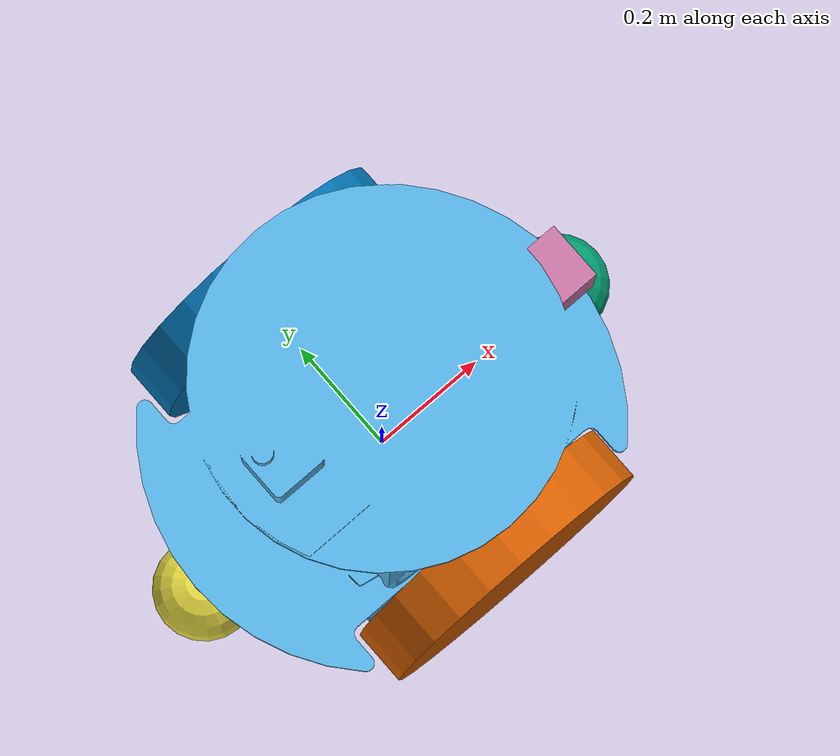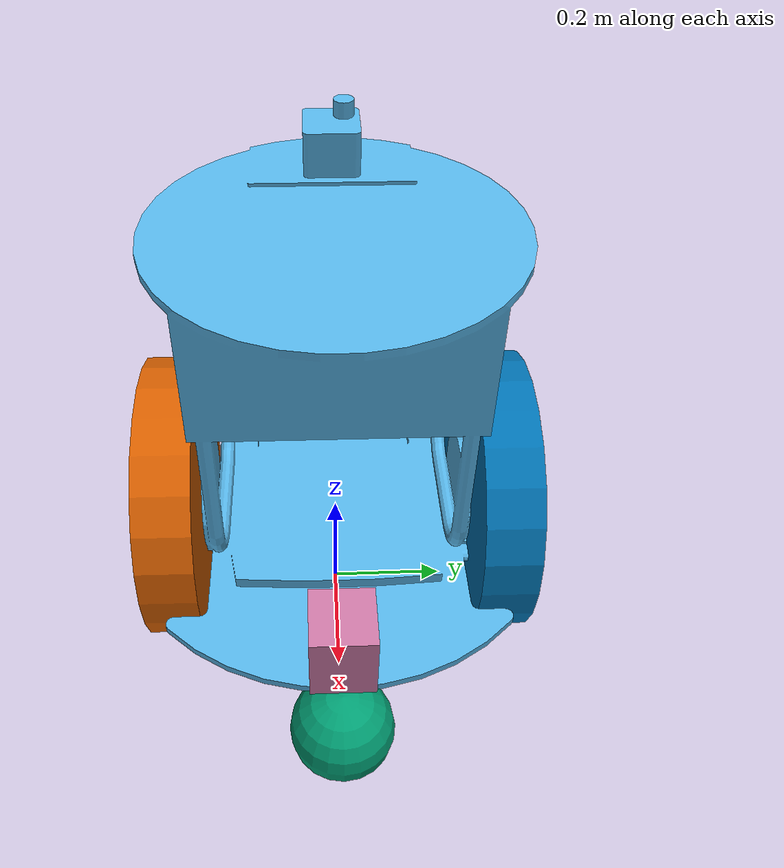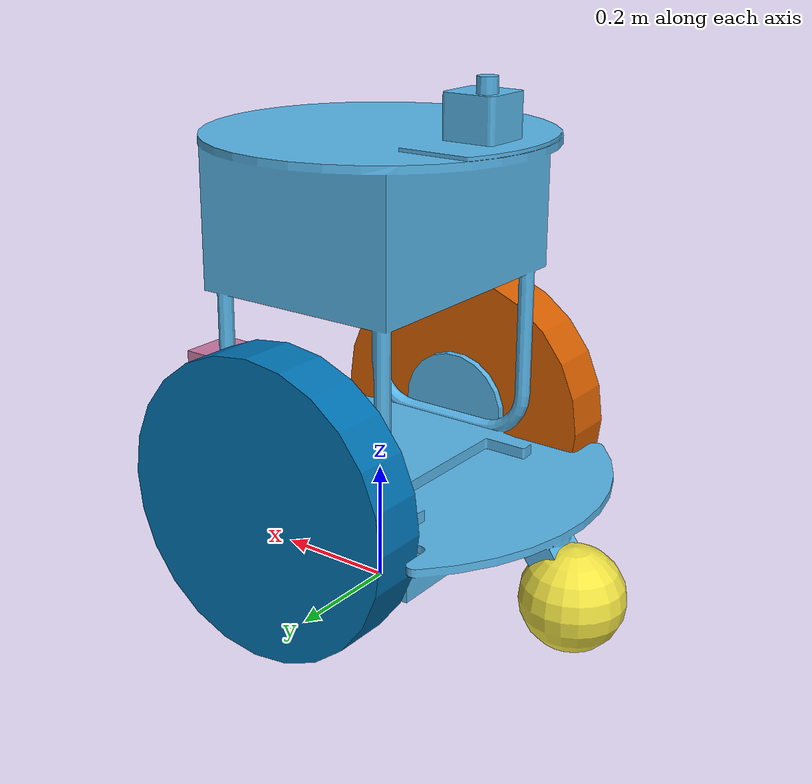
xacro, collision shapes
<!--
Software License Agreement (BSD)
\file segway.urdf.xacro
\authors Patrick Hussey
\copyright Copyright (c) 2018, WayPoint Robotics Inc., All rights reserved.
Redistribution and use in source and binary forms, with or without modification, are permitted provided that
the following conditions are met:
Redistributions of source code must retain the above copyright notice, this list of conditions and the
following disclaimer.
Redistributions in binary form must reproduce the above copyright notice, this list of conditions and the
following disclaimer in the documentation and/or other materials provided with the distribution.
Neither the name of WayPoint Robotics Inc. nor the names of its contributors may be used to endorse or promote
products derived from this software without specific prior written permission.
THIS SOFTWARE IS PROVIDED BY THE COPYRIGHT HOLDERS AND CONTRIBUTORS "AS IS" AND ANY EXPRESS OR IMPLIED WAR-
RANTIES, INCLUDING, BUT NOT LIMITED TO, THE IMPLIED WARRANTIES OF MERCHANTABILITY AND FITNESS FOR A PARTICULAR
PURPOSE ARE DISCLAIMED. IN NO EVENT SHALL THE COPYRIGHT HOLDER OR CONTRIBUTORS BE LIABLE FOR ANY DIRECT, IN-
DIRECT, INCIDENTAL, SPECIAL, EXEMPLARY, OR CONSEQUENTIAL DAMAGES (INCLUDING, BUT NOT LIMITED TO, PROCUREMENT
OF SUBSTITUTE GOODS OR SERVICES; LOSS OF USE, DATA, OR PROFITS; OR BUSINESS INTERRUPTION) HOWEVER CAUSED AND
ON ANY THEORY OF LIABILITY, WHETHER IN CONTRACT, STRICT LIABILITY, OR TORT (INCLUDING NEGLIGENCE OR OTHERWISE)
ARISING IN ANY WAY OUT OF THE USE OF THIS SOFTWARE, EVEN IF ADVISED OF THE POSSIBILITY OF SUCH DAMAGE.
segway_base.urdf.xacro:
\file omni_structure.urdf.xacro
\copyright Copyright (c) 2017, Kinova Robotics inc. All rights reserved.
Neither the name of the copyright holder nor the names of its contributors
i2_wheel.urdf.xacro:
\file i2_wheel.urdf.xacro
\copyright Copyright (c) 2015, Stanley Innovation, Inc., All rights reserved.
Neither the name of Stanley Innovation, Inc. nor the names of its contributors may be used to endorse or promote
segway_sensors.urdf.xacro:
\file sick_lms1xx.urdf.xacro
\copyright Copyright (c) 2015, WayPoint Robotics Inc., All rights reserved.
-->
<?xml version="1.0"?>
<robot name="rmp" xmlns:xacro="http://ros.org/wiki/xacro">
    <!-- Included URDF/XACRO Files -->
    <xacro:include filename="$(find segway_description)/urdf/segway_components/segway_base.urdf.xacro" />
    <xacro:include filename="$(find segway_description)/urdf/sensors/segway_sensors.urdf.xacro" />

    <xacro:property name="M_PI" value="3.14159"/>

    <gazebo>
        <plugin name="gazebo_ros_control" filename="libgazebo_ros_control.so">
            <robotNamespace>/</robotNamespace>
        </plugin>
        <plugin filename="libgazebo_ros_p3d.so" name="gazebo_ros_p3d">
          <bodyName>base_link</bodyName>
          <topicName>ground_truth_odom</topicName>
          <alwaysOn>true</alwaysOn>
          <updateRate>100.0</updateRate>
        </plugin>
    </gazebo>

    <!-- Base link is the center of the robot's chassis between the motors projected on the ground -->
    <link name="base_link"/>

    <!--Fixed Chassis -->
    <xacro:segway_base/>

    <!--Fixed Chassis -->
    <xacro:segway_sensors/>

</robot>

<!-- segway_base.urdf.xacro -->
<robot name="segway_base" xmlns:xacro="http://ros.org/wiki/xacro">
    <xacro:include filename="$(find segway_description)/urdf/segway_components/i2_wheel.urdf.xacro" />

    <!-- Wheel Mounting Positions -->
    <xacro:property name="track" value="0.542391" />
    <xacro:property name="wheel_vertical_offset" value="0.08255015" />

    <!-- Wheel Properties -->
    <xacro:property name="wheel_length" value="0.09224900" />
    <xacro:property name="wheel_radius" value="0.2405681" />

    <xacro:macro name="box_inertia" params="m x y z">
        <inertia  ixx="${m*(y*y+z*z)/12}" ixy = "0" ixz = "0"
        iyy="${m*(x*x+z*z)/12}" iyz = "0"
        izz="${m*(x*x+z*z)/12}" />
    </xacro:macro>

	<xacro:macro name="segway_base">

        <link name="base_chassis_link">
			<inertial>
				<mass value="101.0333036" />
				<origin xyz="0 0 0.202000" />
				<xacro:box_inertia m="101.0333036" x="0.69" y="0.69" z="0.404"/>
		    </inertial>
            <collision>
				<geometry>
					<mesh filename="package://segway_description/meshes/collision/collision_model.stl" />
				</geometry>
			</collision>
			<visual>
				<origin xyz="0 0 0" rpy="0 0 0" />
				<geometry>
					<mesh filename="package://segway_description/meshes/visual/base_chassis.dae" />
				</geometry>
			</visual>
		</link>

        <joint name="base_chassis_joint" type="fixed">
            <origin xyz="0 0 0.158018" rpy="0 0 0" />
            <parent link="base_link" />
            <child link="base_chassis_link" />
        </joint>

        <!-- Front caster -->
        <link name="front_caster_wheel_link">
			<collision>
			    <origin xyz="0 0 0" rpy="0 0 0"/>
				<geometry>
				    <sphere radius="0.083567"/>
				</geometry>
			</collision>
		</link>

        <joint name="front_caster_wheel_joint" type="fixed">
            <origin xyz="0.370050 0 -0.074451" rpy="0 0 0" />
            <parent link="base_chassis_link" />
            <child link="front_caster_wheel_link" />
        </joint>

		<gazebo reference="front_caster_wheel_link">
            <kp>1000000.0</kp>
            <kd>10.0</kd>
            <mu1>0</mu1>
            <mu2>0</mu2>
            <minDepth>0.003</minDepth>
        </gazebo>

        <!-- Rear caster -->
        <link name="rear_caster_wheel_link">
			<collision>
			    <origin xyz="0 0 0" rpy="0 0 0"/>
				<geometry>
				    <sphere radius="0.083567"/>
				</geometry>
			</collision>
		</link>

        <joint name="rear_caster_wheel_joint" type="fixed">
            <origin xyz="-0.370050 0 -0.074451" rpy="0 0 0" />
            <parent link="base_chassis_link" />
            <child link="rear_caster_wheel_link" />
        </joint>

		<gazebo reference="rear_caster_wheel_link">
            <kp>1000000.0</kp>
            <kd>10.0</kd>
            <mu1>0</mu1>
            <mu2>0</mu2>
            <minDepth>0.003</minDepth>
        </gazebo>

        <!-- Segway wheel macros -->
        <xacro:i2_wheel wheel_prefix="left" parent="base_chassis_link" visual_rotation="0.0">
            <origin xyz="0 ${track/2} ${wheel_vertical_offset}" rpy="0 0 0" />
        </xacro:i2_wheel>
        <xacro:i2_wheel wheel_prefix="right" parent="base_chassis_link" visual_rotation="${M_PI}">
            <origin xyz="0 ${-track/2} ${wheel_vertical_offset}" rpy="0 0 0" />
        </xacro:i2_wheel>

    </xacro:macro>
</robot>

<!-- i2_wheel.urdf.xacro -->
<robot xmlns:xacro="http://ros.org/wiki/xacro" name="i2_wheel">

	<xacro:macro name="i2_wheel" params="wheel_prefix parent visual_rotation *joint_pose">
		<link name="${wheel_prefix}_wheel_link">
			<inertial>
				<mass value="4.195729" />
				<origin xyz="0 0 0" />
				<inertia  ixx="0.063680" ixy="0.000000" ixz="0.000000"
                          iyx="0.000000" iyy="0.121410" iyz="0.000000"
                          izx="0.000000" izy="0.000000" izz="0.063680" />
			</inertial>
			<visual>
			    <origin xyz="0 0 0" rpy="0 0 ${visual_rotation}"/>
				<geometry>
					<mesh filename="package://segway_description/meshes/visual/i2_wheel.dae" />
				</geometry>
			</visual>
			<collision>
			    <origin xyz="0 0 0" rpy="${M_PI / 2.0} 0 0"/>
				<geometry>
				    <cylinder length="0.092249" radius="0.2405681"/>
				</geometry>
			</collision>
		</link>

		<gazebo reference="${wheel_prefix}_wheel_link">
            <kp>1000000.0</kp>
            <kd>10.0</kd>
            <mu1>100.0</mu1>
            <mu2>100.0</mu2>
            <fdir1>1 0 0</fdir1>
            <minDepth>0.003</minDepth>
		</gazebo>

		<joint name="${wheel_prefix}_wheel" type="continuous">
			<parent link="${parent}"/>
			<child link="${wheel_prefix}_wheel_link"/>
			<xacro:insert_block name="joint_pose"/>
			<axis xyz="0 1 0" rpy="0 0 0" />
		</joint>

		<transmission name="${wheel_prefix}_wheel_trans" type="SimpleTransmission">
			<type>transmission_interface/SimpleTransmission</type>
			<actuator name="${wheel_prefix}_wheel_motor">
				<mechanicalReduction>1</mechanicalReduction>
			</actuator>
			<joint name="${wheel_prefix}_wheel">
				<hardwareInterface>hardware_interface/VelocityJointInterface</hardwareInterface>
			</joint>
		</transmission>

	</xacro:macro>
</robot>

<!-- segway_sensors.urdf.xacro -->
<robot xmlns:xacro="http://ros.org/wiki/xacro" name="segway_sensors">

    <xacro:macro name="segway_sensors">
        <xacro:include filename="$(find segway_description)/urdf/sensors/sick_tim.urdf.xacro" />

        <!-- Laser Scanners -->
        <xacro:sick_tim laser_prefix="front" parent="base_chassis_link">
            <origin xyz="0.341986 0 0.118067" rpy="0 0 0" />
        </xacro:sick_tim>

    </xacro:macro>

</robot>

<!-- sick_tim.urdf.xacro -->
<robot xmlns:xacro="http://ros.org/wiki/xacro" name="sick_tim">

    <xacro:macro name="sick_tim" params="laser_prefix parent *origin">
        <joint name="${laser_prefix}_laser_joint" type="fixed">
            <xacro:insert_block name="origin" />
            <parent link="${parent}" />
            <child link="${laser_prefix}_laser_link" />
        </joint>

        <link name="${laser_prefix}_laser_link">
            <visual>
                <geometry>
                    <mesh filename="package://segway_description/meshes/visual/sensors/sick_tim.dae" />
                </geometry>
            </visual>
            <collision>
                <geometry>
                    <box size="0.1 0.1 0.12"/>
                </geometry>
            </collision>
        </link>

        <gazebo reference="${laser_prefix}_laser_link">
            <sensor type="gpu_ray" name="${laser_prefix}_tim_laser">
                <pose>0 0 0 0 0 0</pose>
                <visualize>false</visualize>
                <update_rate>15</update_rate>
                <ray>
                    <scan>
                        <horizontal>
                        <samples>660</samples>
                        <resolution>1</resolution>
                        <min_angle>-1.9</min_angle>
                        <max_angle>1.9</max_angle>
                        </horizontal>
                    </scan>
                    <range>
                        <min>0.10</min>
                        <max>20.0</max>
                        <resolution>0.01</resolution>
                    </range>
                    <noise>
                        <type>gaussian</type>
                        <mean>0.0</mean>
                        <stddev>0.0</stddev>
                    </noise>
                </ray>
                <plugin name="${laser_prefix}_tim_node" filename="libgazebo_ros_gpu_laser.so">
                    <topicName>/segway/${laser_prefix}_scan</topicName>
                    <frameName>${laser_prefix}_laser_link</frameName>
                </plugin>
            </sensor>
        </gazebo>
    </xacro:macro>
</robot>
